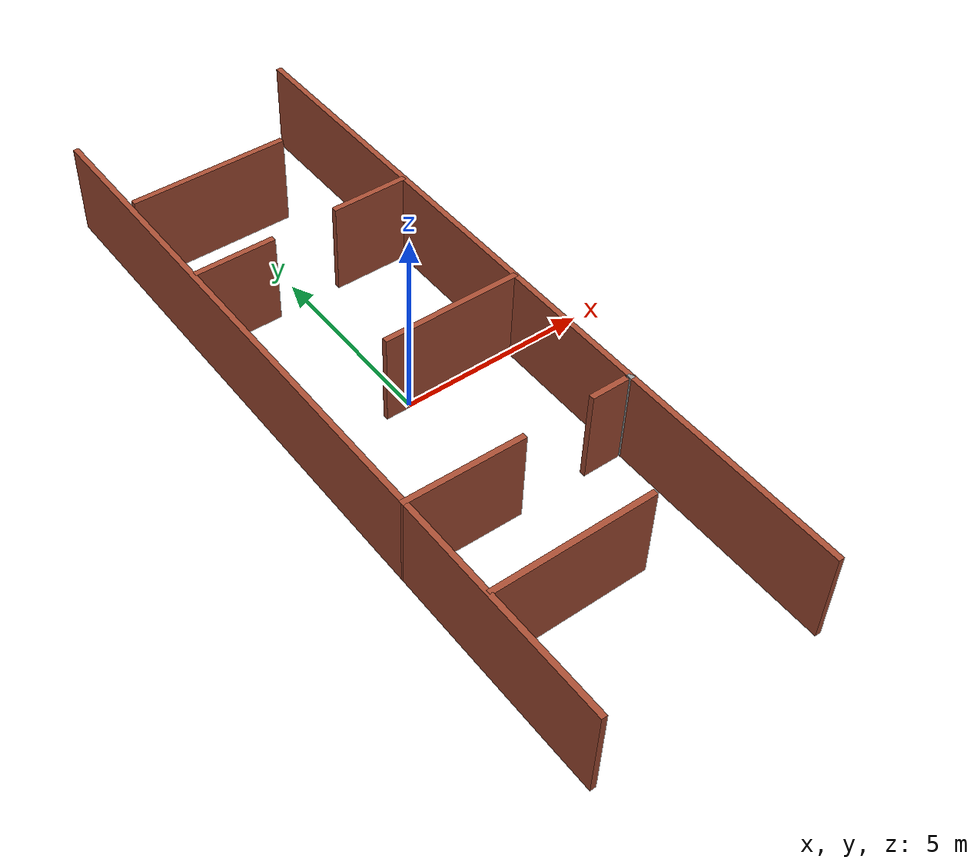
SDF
<?xml version='1.0'?>
<sdf version='1.6'>
  <model name='simple_maze'>
    <pose frame=''>-0.000434 0.0095 0 0 -0 0</pose>
    <link name='Wall_10'>
      <collision name='Wall_10_Collision'>
        <geometry>
          <box>
            <size>0.15 0.15 2.5</size>
          </box>
        </geometry>
        <pose frame=''>0 0 1.25 0 -0 0</pose>
      </collision>
      <visual name='Wall_10_Visual'>
        <pose frame=''>0 0 1.25 0 -0 0</pose>
        <geometry>
          <box>
            <size>0.15 0.15 2.5</size>
          </box>
        </geometry>
        <material>
          <script>
            <uri>file://media/materials/scripts/gazebo.material</uri>
            <name>Gazebo/Grey</name>
          </script>
          <ambient>1 1 1 1</ambient>
        </material>
      </visual>
      <pose frame=''>3.00043 -4.0095 0 0 -0 0</pose>
    </link>
    <link name='Wall_12'>
      <collision name='Wall_12_Collision'>
        <geometry>
          <box>
            <size>1 0.15 2.5</size>
          </box>
        </geometry>
        <pose frame=''>0 0 1.25 0 -0 0</pose>
      </collision>
      <visual name='Wall_12_Visual'>
        <pose frame=''>0 0 1.25 0 -0 0</pose>
        <geometry>
          <box>
            <size>1 0.15 2.5</size>
          </box>
        </geometry>
        <material>
          <script>
            <uri>file://media/materials/scripts/gazebo.material</uri>
            <name>Gazebo/Bricks</name>
          </script>
          <ambient>1 1 1 1</ambient>
        </material>
      </visual>
      <pose frame=''>2.39443 -3.9855 0 0 -0 3.14159</pose>
    </link>
    <link name='Wall_14'>
      <collision name='Wall_14_Collision'>
        <geometry>
          <box>
            <size>3.75 0.15 2.5</size>
          </box>
        </geometry>
        <pose frame=''>0 0 1.25 0 -0 0</pose>
      </collision>
      <visual name='Wall_14_Visual'>
        <pose frame=''>0 0 1.25 0 -0 0</pose>
        <geometry>
          <box>
            <size>3.75 0.15 2.5</size>
          </box>
        </geometry>
        <material>
          <script>
            <uri>file://media/materials/scripts/gazebo.material</uri>
            <name>Gazebo/Bricks</name>
          </script>
          <ambient>1 1 1 1</ambient>
        </material>
      </visual>
      <pose frame=''>1.20043 -0.0095 0 0 -0 3.14159</pose>
    </link>
    <link name='Wall_17'>
      <collision name='Wall_17_Collision'>
        <geometry>
          <box>
            <size>4.25 0.15 2.5</size>
          </box>
        </geometry>
        <pose frame=''>0 0 1.25 0 -0 0</pose>
      </collision>
      <visual name='Wall_17_Visual'>
        <pose frame=''>0 0 1.25 0 -0 0</pose>
        <geometry>
          <box>
            <size>4.25 0.15 2.5</size>
          </box>
        </geometry>
        <material>
          <script>
            <uri>file://media/materials/scripts/gazebo.material</uri>
            <name>Gazebo/Bricks</name>
          </script>
          <ambient>1 1 1 1</ambient>
        </material>
      </visual>
      <pose frame=''>-0.876566 -6.7225 0 0 -0 0</pose>
    </link>
    <link name='Wall_20'>
      <collision name='Wall_20_Collision'>
        <geometry>
          <box>
            <size>2.15 0.15 2.5</size>
          </box>
        </geometry>
        <pose frame=''>0 0 1.25 0 -0 0</pose>
      </collision>
      <visual name='Wall_20_Visual'>
        <pose frame=''>0 0 1.25 0 -0 0</pose>
        <geometry>
          <box>
            <size>2.15 0.15 2.5</size>
          </box>
        </geometry>
        <material>
          <script>
            <uri>file://media/materials/scripts/gazebo.material</uri>
            <name>Gazebo/Bricks</name>
          </script>
          <ambient>1 1 1 1</ambient>
        </material>
      </visual>
      <pose frame=''>-1.87857 4.3175 0 0 -0 0</pose>
    </link>
    <link name='Wall_22'>
      <collision name='Wall_22_Collision'>
        <geometry>
          <box>
            <size>2.15 0.15 2.5</size>
          </box>
        </geometry>
        <pose frame=''>0 0 1.25 0 -0 0</pose>
      </collision>
      <visual name='Wall_22_Visual'>
        <pose frame=''>0 0 1.25 0 -0 0</pose>
        <geometry>
          <box>
            <size>2.15 0.15 2.5</size>
          </box>
        </geometry>
        <material>
          <script>
            <uri>file://media/materials/scripts/gazebo.material</uri>
            <name>Gazebo/Bricks</name>
          </script>
          <ambient>1 1 1 1</ambient>
        </material>
      </visual>
      <pose frame=''>2.00043 4.3575 0 0 -0 3.14159</pose>
    </link>
    <link name='Wall_24'>
      <collision name='Wall_24_Collision'>
        <geometry>
          <box>
            <size>4.25 0.15 2.5</size>
          </box>
        </geometry>
        <pose frame=''>0 0 1.25 0 -0 0</pose>
      </collision>
      <visual name='Wall_24_Visual'>
        <pose frame=''>0 0 1.25 0 -0 0</pose>
        <geometry>
          <box>
            <size>4.25 0.15 2.5</size>
          </box>
        </geometry>
        <material>
          <script>
            <uri>file://media/materials/scripts/gazebo.material</uri>
            <name>Gazebo/Bricks</name>
          </script>
          <ambient>1 1 1 1</ambient>
        </material>
      </visual>
      <pose frame=''>-0.729566 7.4095 0 0 -0 0</pose>
    </link>
    <link name='Wall_3'>
      <collision name='Wall_3_Collision'>
        <geometry>
          <box>
            <size>20.15 0.15 2.5</size>
          </box>
        </geometry>
        <pose frame=''>0 0 1.25 0 -0 0</pose>
      </collision>
      <visual name='Wall_3_Visual'>
        <pose frame=''>0 0 1.25 0 -0 0</pose>
        <geometry>
          <box>
            <size>20.15 0.15 2.5</size>
          </box>
        </geometry>
        <material>
          <script>
            <uri>file://media/materials/scripts/gazebo.material</uri>
            <name>Gazebo/Bricks</name>
          </script>
          <ambient>1 1 1 1</ambient>
        </material>
      </visual>
      <pose frame=''>-2.99957 0.0145 0 0 -0 1.5708</pose>
    </link>
    <link name='Wall_5'>
      <collision name='Wall_5_Collision'>
        <geometry>
          <box>
            <size>20.15 0.15 2.5</size>
          </box>
        </geometry>
        <pose frame=''>0 0 1.25 0 -0 0</pose>
      </collision>
      <visual name='Wall_5_Visual'>
        <pose frame=''>0 0 1.25 0 -0 0</pose>
        <geometry>
          <box>
            <size>20.15 0.15 2.5</size>
          </box>
        </geometry>
        <material>
          <script>
            <uri>file://media/materials/scripts/gazebo.material</uri>
            <name>Gazebo/Bricks</name>
          </script>
          <ambient>1 1 1 1</ambient>
        </material>
      </visual>
      <pose frame=''>3.00043 -0.0145 0 0 -0 1.5708</pose>
    </link>
    <link name='Wall_8'>
      <collision name='Wall_8_Collision'>
        <geometry>
          <box>
            <size>3.1502 0.15 2.5</size>
          </box>
        </geometry>
        <pose frame=''>0 0 1.25 0 -0 0</pose>
      </collision>
      <visual name='Wall_8_Visual'>
        <pose frame=''>0 0 1.25 0 -0 0</pose>
        <geometry>
          <box>
            <size>3.1502 0.15 2.5</size>
          </box>
        </geometry>
        <material>
          <script>
            <uri>file://media/materials/scripts/gazebo.material</uri>
            <name>Gazebo/Bricks</name>
          </script>
          <ambient>1 1 1 1</ambient>
        </material>
      </visual>
      <pose frame=''>-1.49957 -3.992 0 0 0 -0.011666</pose>
    </link>
    <static>1</static>
  </model>
</sdf>
